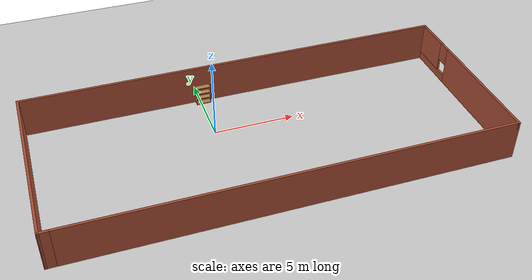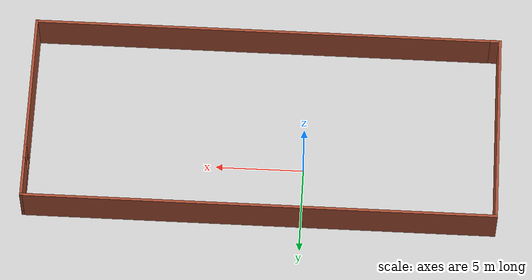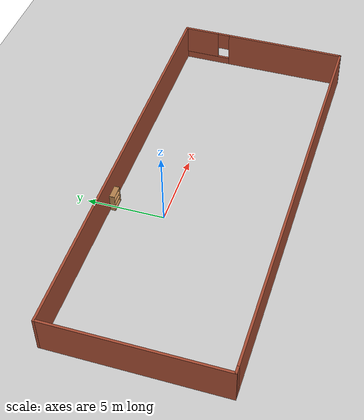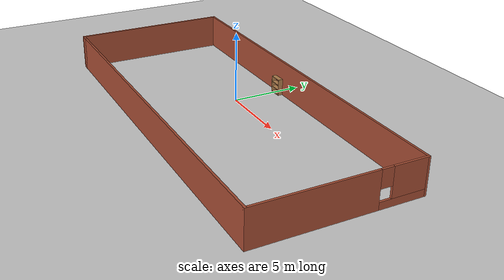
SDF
<sdf version="1.7">
 <world name="default">
  <light name="sun" type="directional">
   <pose>0 0 10 0 -0 0</pose>
   <diffuse>0.8 0.8 0.8 1</diffuse>
   <specular>0.2 0.2 0.2 1</specular>
   <attenuation>
    <range>1000</range>
    <constant>0.9</constant>
    <linear>0.01</linear>
    <quadratic>0.001</quadratic>
   </attenuation>
   <direction>-0.5 0.1 -0.9</direction>
   <spot><inner_angle>0</inner_angle><outer_angle>0</outer_angle><falloff>0</falloff></spot>
  </light>
  <model name="ground_plane">
   <static>1</static>
   <link name="link">
    <collision name="collision">
     <geometry><plane><normal>0 0 1</normal><size>100 100</size></plane></geometry>
     <surface>
      <contact><collide_bitmask>65535</collide_bitmask></contact>
      <friction><ode><mu>100</mu><mu2>50</mu2></ode></friction>
     </surface>
    </collision>
    <visual name="visual">
     <cast_shadows>0</cast_shadows>
     <geometry><plane><normal>0 0 1</normal><size>100 100</size></plane></geometry>
     <material>
      <script><uri>file://media/materials/scripts/gazebo.material</uri><name>Gazebo/Grey</name></script>
     </material>
    </visual>
   </link>
  </model>
  <gravity>0 0 -9.8</gravity>
  <magnetic_field>6e-06 2.3e-05 -4.2e-05</magnetic_field>
  <atmosphere type="adiabatic"/>
  <physics type="ode">
   <max_step_size>0.001</max_step_size>
   <real_time_factor>1</real_time_factor>
   <real_time_update_rate>1000</real_time_update_rate>
  </physics>
  <scene><ambient>0.4 0.4 0.4 1</ambient><background>0.7 0.7 0.7 1</background><shadows>1</shadows></scene>
  <audio><device>default</device></audio>
  <spherical_coordinates>
   <surface_model>EARTH_WGS84</surface_model>
   <latitude_deg>0</latitude_deg>
   <longitude_deg>0</longitude_deg>
   <elevation>0</elevation>
   <heading_deg>0</heading_deg>
  </spherical_coordinates>
  <model name="bookshelf">
   <static>1</static>
   <link name="link">
    <inertial><mass>1</mass></inertial>
    <collision name="back">
     <pose>0 0.005 0.6 0 -0 0</pose>
     <geometry><box><size>0.9 0.01 1.2</size></box></geometry>
    </collision>
    <visual name="visual1">
     <pose>0 0.005 0.6 0 -0 0</pose>
     <geometry><box><size>0.9 0.01 1.2</size></box></geometry>
     <material>
      <script><uri>file://media/materials/scripts/gazebo.material</uri><name>Gazebo/Wood</name></script>
     </material>
    </visual>
    <collision name="left_side">
     <pose>0.45 -0.195 0.6 0 -0 0</pose>
     <geometry><box><size>0.02 0.4 1.2</size></box></geometry>
    </collision>
    <visual name="visual2">
     <pose>0.45 -0.195 0.6 0 -0 0</pose>
     <geometry><box><size>0.02 0.4 1.2</size></box></geometry>
     <material>
      <script><uri>file://media/materials/scripts/gazebo.material</uri><name>Gazebo/Wood</name></script>
     </material>
    </visual>
    <collision name="right_side">
     <pose>-0.45 -0.195 0.6 0 -0 0</pose>
     <geometry><box><size>0.02 0.4 1.2</size></box></geometry>
    </collision>
    <visual name="visual3">
     <pose>-0.45 -0.195 0.6 0 -0 0</pose>
     <geometry><box><size>0.02 0.4 1.2</size></box></geometry>
     <material>
      <script><uri>file://media/materials/scripts/gazebo.material</uri><name>Gazebo/Wood</name></script>
     </material>
    </visual>
    <collision name="bottom">
     <pose>0 -0.195 0.03 0 -0 0</pose>
     <geometry><box><size>0.88 0.4 0.06</size></box></geometry>
    </collision>
    <visual name="visual4">
     <pose>0 -0.195 0.03 0 -0 0</pose>
     <geometry><box><size>0.88 0.4 0.06</size></box></geometry>
     <material>
      <script><uri>file://media/materials/scripts/gazebo.material</uri><name>Gazebo/Wood</name></script>
     </material>
    </visual>
    <collision name="top">
     <pose>0 -0.195 1.19 0 -0 0</pose>
     <geometry><box><size>0.88 0.4 0.02</size></box></geometry>
    </collision>
    <visual name="visual5">
     <pose>0 -0.195 1.19 0 -0 0</pose>
     <geometry><box><size>0.88 0.4 0.02</size></box></geometry>
     <material>
      <script><uri>file://media/materials/scripts/gazebo.material</uri><name>Gazebo/Wood</name></script>
     </material>
    </visual>
    <collision name="low_shelf">
     <pose>0 -0.195 0.43 0 -0 0</pose>
     <geometry><box><size>0.88 0.4 0.02</size></box></geometry>
    </collision>
    <visual name="visual6">
     <pose>0 -0.195 0.43 0 -0 0</pose>
     <geometry><box><size>0.88 0.4 0.02</size></box></geometry>
     <material>
      <script><uri>file://media/materials/scripts/gazebo.material</uri><name>Gazebo/Wood</name></script>
     </material>
    </visual>
    <collision name="high_shelf">
     <pose>0 -0.195 0.8 0 -0 0</pose>
     <geometry><box><size>0.88 0.4 0.02</size></box></geometry>
    </collision>
    <visual name="visual7">
     <pose>0 -0.195 0.8 0 -0 0</pose>
     <geometry><box><size>0.88 0.4 0.02</size></box></geometry>
     <material>
      <script><uri>file://media/materials/scripts/gazebo.material</uri><name>Gazebo/Wood</name></script>
     </material>
    </visual>
   </link>
   <pose>0.157299 3.45702 0 0 -0 0</pose>
  </model>
  <model name="test">
   <pose>2.3944 -2.06911 0 0 -0 0</pose>
   <link name="Wall_2">
    <collision name="Wall_2_Collision">
     <geometry><box><size>26.25 0.15 2.5</size></box></geometry>
     <pose>0 0 1.25 0 -0 0</pose>
    </collision>
    <visual name="Wall_2_Visual">
     <pose>0 0 1.25 0 -0 0</pose>
     <geometry><box><size>26.25 0.15 2.5</size></box></geometry>
     <material>
      <script><uri>file://media/materials/scripts/gazebo.material</uri><name>Gazebo/Bricks</name></script>
      <ambient>1 1 1 1</ambient>
     </material>
     <meta><layer>0</layer></meta>
    </visual>
    <pose>0.25 -5.55 0 0 -0 0</pose>
   </link>
   <link name="Wall_3">
    <pose>13.3 0 0 0 -0 1.5708</pose>
    <visual name="Wall_3_Visual_0">
     <pose>-1.60179 0 1.25 0 -0 0</pose>
     <geometry><box><size>8.04642 0.15 2.5</size></box></geometry>
     <material>
      <script><uri>file://media/materials/scripts/gazebo.material</uri><name>Gazebo/Bricks</name></script>
      <ambient>1 1 1 1</ambient>
     </material>
     <meta><layer>0</layer></meta>
    </visual>
    <collision name="Wall_3_Collision_0">
     <geometry><box><size>8.04642 0.15 2.5</size></box></geometry>
     <pose>-1.60179 0 1.25 0 -0 0</pose>
    </collision>
    <visual name="Wall_3_Visual_1">
     <pose>4.02321 0 0.25 0 -0 0</pose>
     <geometry><box><size>3.20357 0.15 0.5</size></box></geometry>
     <material>
      <script><uri>file://media/materials/scripts/gazebo.material</uri><name>Gazebo/Bricks</name></script>
      <ambient>1 1 1 1</ambient>
     </material>
     <meta><layer>0</layer></meta>
    </visual>
    <collision name="Wall_3_Collision_1">
     <geometry><box><size>3.20357 0.15 0.5</size></box></geometry>
     <pose>4.02321 0 0.25 0 -0 0</pose>
    </collision>
    <visual name="Wall_3_Visual_2">
     <pose>4.42321 0 1.5 0 -0 0</pose>
     <geometry><box><size>2.40358 0.15 2</size></box></geometry>
     <material>
      <script><uri>file://media/materials/scripts/gazebo.material</uri><name>Gazebo/Bricks</name></script>
      <ambient>1 1 1 1</ambient>
     </material>
     <meta><layer>0</layer></meta>
    </visual>
    <collision name="Wall_3_Collision_2">
     <geometry><box><size>2.40358 0.15 2</size></box></geometry>
     <pose>4.42321 0 1.5 0 -0 0</pose>
    </collision>
    <visual name="Wall_3_Visual_3">
     <pose>2.82143 0 1.9 0 -0 0</pose>
     <geometry><box><size>0.8 0.15 1.2</size></box></geometry>
     <material>
      <script><uri>file://media/materials/scripts/gazebo.material</uri><name>Gazebo/Bricks</name></script>
      <ambient>1 1 1 1</ambient>
     </material>
     <meta><layer>0</layer></meta>
    </visual>
    <collision name="Wall_3_Collision_3">
     <geometry><box><size>0.8 0.15 1.2</size></box></geometry>
     <pose>2.82143 0 1.9 0 -0 0</pose>
    </collision>
   </link>
   <link name="Wall_4">
    <collision name="Wall_4_Collision">
     <geometry><box><size>26.75 0.15 2.5</size></box></geometry>
     <pose>0 0 1.25 0 -0 0</pose>
    </collision>
    <visual name="Wall_4_Visual">
     <pose>0 0 1.25 0 -0 0</pose>
     <geometry><box><size>26.75 0.15 2.5</size></box></geometry>
     <material>
      <script><uri>file://media/materials/scripts/gazebo.material</uri><name>Gazebo/Bricks</name></script>
      <ambient>1 1 1 1</ambient>
     </material>
     <meta><layer>0</layer></meta>
    </visual>
    <pose>0 5.55 0 0 -0 3.14159</pose>
   </link>
   <link name="Wall_5">
    <collision name="Wall_5_Collision">
     <geometry><box><size>11.25 0.15 2.5</size></box></geometry>
     <pose>0 0 1.25 0 -0 0</pose>
    </collision>
    <visual name="Wall_5_Visual">
     <pose>0 0 1.25 0 -0 0</pose>
     <geometry><box><size>11.25 0.15 2.5</size></box></geometry>
     <material>
      <script><uri>file://media/materials/scripts/gazebo.material</uri><name>Gazebo/Bricks</name></script>
      <ambient>1 1 1 1</ambient>
     </material>
     <meta><layer>0</layer></meta>
    </visual>
    <pose>-13.3 0 0 0 -0 -1.5708</pose>
   </link>
   <link name="Wall_6">
    <collision name="Wall_6_Collision">
     <geometry><box><size>0.65 0.15 2.5</size></box></geometry>
     <pose>0 0 1.25 0 -0 0</pose>
    </collision>
    <visual name="Wall_6_Visual">
     <pose>0 0 1.25 0 -0 0</pose>
     <geometry><box><size>0.65 0.15 2.5</size></box></geometry>
     <material>
      <script><uri>file://media/materials/scripts/gazebo.material</uri><name>Gazebo/Bricks</name></script>
      <ambient>1 1 1 1</ambient>
     </material>
     <meta><layer>0</layer></meta>
    </visual>
    <pose>-13.05 -5.55 0 0 -0 0</pose>
   </link>
   <static>1</static>
  </model>
 </world>
</sdf>
